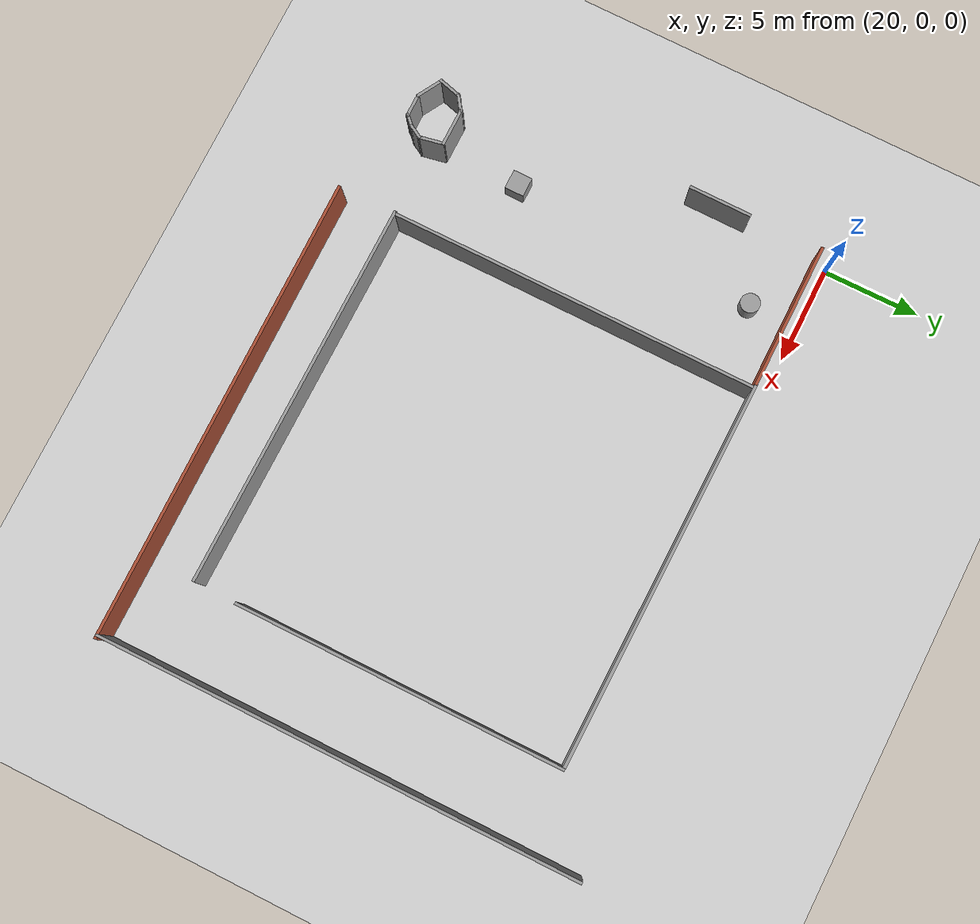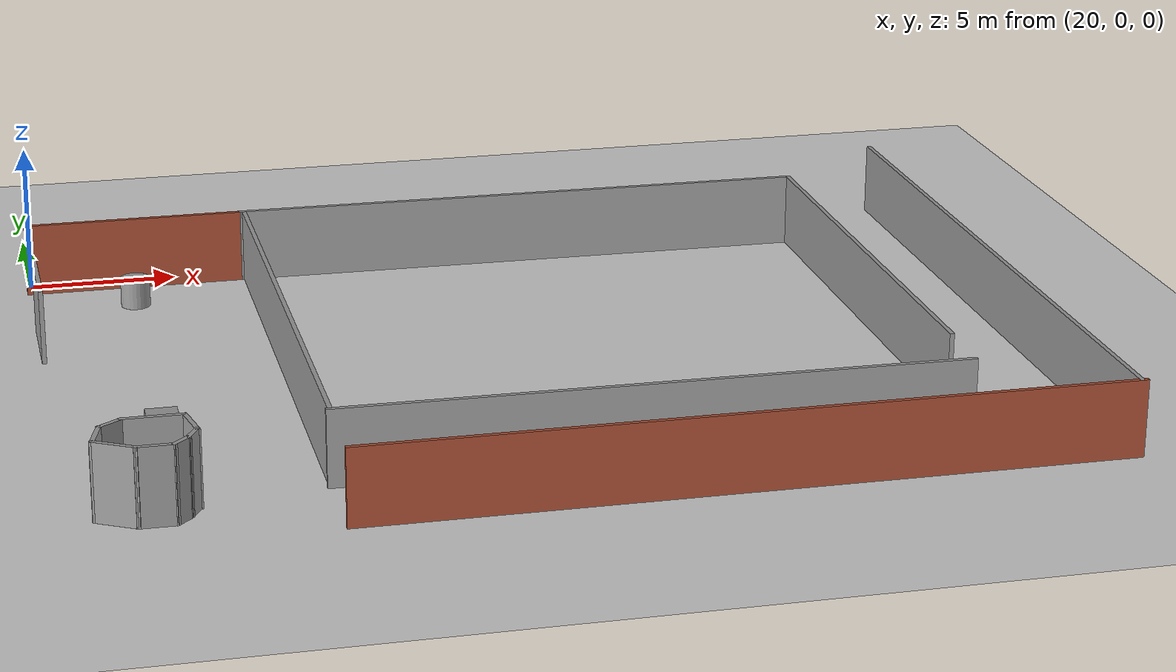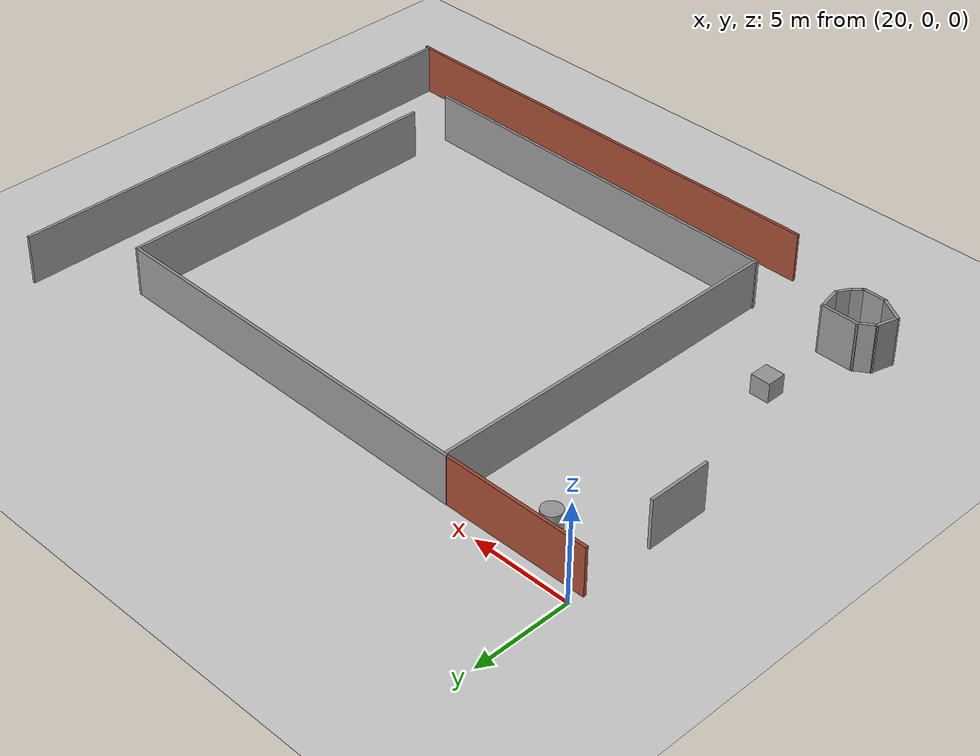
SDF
<sdf version="1.7">
 <world name="default">
  <model name="ground_plane">
   <static>1</static>
   <link name="link">
    <collision name="collision">
     <geometry><plane><normal>0 0 1</normal><size>150 100</size></plane></geometry>
     <surface>
      <contact><collide_bitmask>65535</collide_bitmask></contact>
      <friction><ode><mu>100</mu><mu2>50</mu2></ode></friction>
     </surface>
    </collision>
    <visual name="visual">
     <cast_shadows>0</cast_shadows>
     <geometry><plane><normal>0 0 1</normal><size>150 100</size></plane></geometry>
     <material>
      <script><uri>file://media/materials/scripts/gazebo.material</uri><name>Gazebo/Grey</name></script>
     </material>
    </visual>
   </link>
  </model>
  <model name="unit_cylinder">
   <link name="link">
    <inertial>
     <mass>1</mass>
     <inertia><ixx>0.145833</ixx><ixy>0</ixy><ixz>0</ixz><iyy>0.145833</iyy><iyz>0</iyz><izz>0.125</izz></inertia>
    </inertial>
    <visual name="visual">
     <geometry><cylinder><radius>0.5</radius><length>1</length></cylinder></geometry>
     <material>
      <script><name>Gazebo/Grey</name><uri>file://media/materials/scripts/gazebo.material</uri></script>
      <shader type="pixel"><normal_map>__default__</normal_map></shader>
      <ambient>0.3 0.3 0.3 1</ambient>
      <diffuse>0.7 0.7 0.7 1</diffuse>
      <specular>0.01 0.01 0.01 1</specular>
      <emissive>0 0 0 1</emissive>
     </material>
    </visual>
    <collision name="collision">
     <geometry><cylinder><radius>1</radius><length>1</length></cylinder></geometry>
     <surface>
      <friction>
       <ode><mu>1</mu><mu2>1</mu2><fdir1>0 0 0</fdir1><slip1>0</slip1><slip2>0</slip2></ode>
       <torsional>
        <coefficient>1</coefficient>
        <patch_radius>0</patch_radius>
        <surface_radius>0</surface_radius>
        <use_patch_radius>1</use_patch_radius>
        <ode><slip>0</slip></ode>
       </torsional>
      </friction>
      <bounce><restitution_coefficient>0</restitution_coefficient><threshold>1e+06</threshold></bounce>
      <contact>
       <collide_without_contact>0</collide_without_contact>
       <collide_without_contact_bitmask>1</collide_without_contact_bitmask>
       <collide_bitmask>1</collide_bitmask>
       <ode>
        <soft_cfm>0</soft_cfm>
        <soft_erp>0.2</soft_erp>
        <kp>1e+13</kp>
        <kd>1</kd>
        <max_vel>0.01</max_vel>
        <min_depth>0</min_depth>
       </ode>
       <bullet>
        <split_impulse>1</split_impulse>
        <split_impulse_penetration_threshold>-0.01</split_impulse_penetration_threshold>
        <soft_cfm>0</soft_cfm>
        <soft_erp>0.2</soft_erp>
        <kp>1e+13</kp>
        <kd>1</kd>
       </bullet>
      </contact>
     </surface>
    </collision>
   </link>
   <link name="link_1">
    <inertial>
     <mass>1</mass>
     <inertia>
      <ixx>0.166667</ixx>
      <ixy>0</ixy>
      <ixz>0</ixz>
      <iyy>0.166667</iyy>
      <iyz>0</iyz>
      <izz>0.166667</izz>
     </inertia>
    </inertial>
    <pose>-0.400023 -12.7768 -0 0 -0 0</pose>
    <visual name="visual">
     <geometry><box><size>1 1 1</size></box></geometry>
     <material>
      <lighting>1</lighting>
      <script><uri>file://media/materials/scripts/gazebo.material</uri><name>Gazebo/Grey</name></script>
      <shader type="pixel"><normal_map>__default__</normal_map></shader>
      <ambient>0.3 0.3 0.3 1</ambient>
      <diffuse>0.7 0.7 0.7 1</diffuse>
      <specular>0.01 0.01 0.01 1</specular>
      <emissive>0 0 0 1</emissive>
     </material>
    </visual>
    <collision name="collision">
     <geometry><box><size>3 3 1</size></box></geometry>
     <surface>
      <friction>
       <ode><mu>1</mu><mu2>1</mu2><fdir1>0 0 0</fdir1><slip1>0</slip1><slip2>0</slip2></ode>
       <torsional>
        <coefficient>1</coefficient>
        <patch_radius>0</patch_radius>
        <surface_radius>0</surface_radius>
        <use_patch_radius>1</use_patch_radius>
        <ode><slip>0</slip></ode>
       </torsional>
      </friction>
      <bounce><restitution_coefficient>0</restitution_coefficient><threshold>1e+06</threshold></bounce>
      <contact>
       <collide_without_contact>0</collide_without_contact>
       <collide_without_contact_bitmask>1</collide_without_contact_bitmask>
       <collide_bitmask>1</collide_bitmask>
       <ode>
        <soft_cfm>0</soft_cfm>
        <soft_erp>0.2</soft_erp>
        <kp>1e+13</kp>
        <kd>1</kd>
        <max_vel>0.01</max_vel>
        <min_depth>0</min_depth>
       </ode>
       <bullet>
        <split_impulse>1</split_impulse>
        <split_impulse_penetration_threshold>-0.01</split_impulse_penetration_threshold>
        <soft_cfm>0</soft_cfm>
        <soft_erp>0.2</soft_erp>
        <kp>1e+13</kp>
        <kd>1</kd>
       </bullet>
      </contact>
     </surface>
    </collision>
   </link>
   <static>0</static>
   <pose>23.3885 -2.61658 0.499994 4e-06 -3e-06 3.9e-05</pose>
  </model>
  <model name="unregular_wall_0">
   <pose>22 -19.4926 0 0 -0 0</pose>
   <link name="Wall_0">
    <collision name="Wall_0_Collision">
     <geometry><box><size>1.99003 0.15 2.5</size></box></geometry>
     <pose>0 0 1.25 0 -0 0</pose>
    </collision>
    <visual name="Wall_0_Visual">
     <pose>0 0 1.25 0 -0 0</pose>
     <geometry><box><size>1.99003 0.15 2.5</size></box></geometry>
     <material>
      <script><uri>file://media/materials/scripts/gazebo.material</uri><name>Gazebo/Grey</name></script>
      <ambient>1 1 1 1</ambient>
     </material>
     <meta><layer>0</layer></meta>
    </visual>
    <pose>0.359239 0.205461 0 0 -0 -0.005435</pose>
   </link>
   <link name="Wall_1">
    <collision name="Wall_1_Collision">
     <geometry><box><size>1.37286 0.15 2.5</size></box></geometry>
     <pose>0 0 1.25 0 -0 0</pose>
    </collision>
    <visual name="Wall_1_Visual">
     <pose>0 0 1.25 0 -0 0</pose>
     <geometry><box><size>1.37286 0.15 2.5</size></box></geometry>
     <material>
      <script><uri>file://media/materials/scripts/gazebo.material</uri><name>Gazebo/Grey</name></script>
      <ambient>1 1 1 1</ambient>
     </material>
     <meta><layer>0</layer></meta>
    </visual>
    <pose>1.40424 -0.400057 0 0 -0 -1.38159</pose>
   </link>
   <link name="Wall_2">
    <collision name="Wall_2_Collision">
     <geometry><box><size>0.814319 0.15 2.5</size></box></geometry>
     <pose>0 0 1.25 0 -0 0</pose>
    </collision>
    <visual name="Wall_2_Visual">
     <pose>0 0 1.25 0 -0 0</pose>
     <geometry><box><size>0.814319 0.15 2.5</size></box></geometry>
     <material>
      <script><uri>file://media/materials/scripts/gazebo.material</uri><name>Gazebo/Grey</name></script>
      <ambient>1 1 1 1</ambient>
     </material>
     <meta><layer>0</layer></meta>
    </visual>
    <pose>1.34688 -1.29035 0 0 -0 -2.08149</pose>
   </link>
   <link name="Wall_3">
    <collision name="Wall_3_Collision">
     <geometry><box><size>0.75 0.15 2.5</size></box></geometry>
     <pose>0 0 1.25 0 -0 0</pose>
    </collision>
    <visual name="Wall_3_Visual">
     <pose>0 0 1.25 0 -0 0</pose>
     <geometry><box><size>0.75 0.15 2.5</size></box></geometry>
     <material>
      <script><uri>file://media/materials/scripts/gazebo.material</uri><name>Gazebo/Grey</name></script>
      <ambient>1 1 1 1</ambient>
     </material>
     <meta><layer>0</layer></meta>
    </visual>
    <pose>0.972394 -1.79226 0 0 -0 -2.35619</pose>
   </link>
   <link name="Wall_4">
    <collision name="Wall_4_Collision">
     <geometry><box><size>1.25 0.15 2.5</size></box></geometry>
     <pose>0 0 1.25 0 -0 0</pose>
    </collision>
    <visual name="Wall_4_Visual">
     <pose>0 0 1.25 0 -0 0</pose>
     <geometry><box><size>1.25 0.15 2.5</size></box></geometry>
     <material>
      <script><uri>file://media/materials/scripts/gazebo.material</uri><name>Gazebo/Grey</name></script>
      <ambient>1 1 1 1</ambient>
     </material>
     <meta><layer>0</layer></meta>
    </visual>
    <pose>0.210262 -2.0044 0 0 -0 3.14159</pose>
   </link>
   <link name="Wall_5">
    <collision name="Wall_5_Collision">
     <geometry><box><size>1.5 0.15 2.5</size></box></geometry>
     <pose>0 0 1.25 0 -0 0</pose>
    </collision>
    <visual name="Wall_5_Visual">
     <pose>0 0 1.25 0 -0 0</pose>
     <geometry><box><size>1.5 0.15 2.5</size></box></geometry>
     <material>
      <script><uri>file://media/materials/scripts/gazebo.material</uri><name>Gazebo/Grey</name></script>
      <ambient>1 1 1 1</ambient>
     </material>
     <meta><layer>0</layer></meta>
    </visual>
    <pose>-0.924305 -1.6669 0 0 -0 2.61799</pose>
   </link>
   <link name="Wall_6">
    <collision name="Wall_6_Collision">
     <geometry><box><size>1.25 0.15 2.5</size></box></geometry>
     <pose>0 0 1.25 0 -0 0</pose>
    </collision>
    <visual name="Wall_6_Visual">
     <pose>0 0 1.25 0 -0 0</pose>
     <geometry><box><size>1.25 0.15 2.5</size></box></geometry>
     <material>
      <script><uri>file://media/materials/scripts/gazebo.material</uri><name>Gazebo/Grey</name></script>
      <ambient>1 1 1 1</ambient>
     </material>
     <meta><layer>0</layer></meta>
    </visual>
    <pose>-1.36652 -0.798136 0 0 -0 1.309</pose>
   </link>
   <link name="Wall_7">
    <collision name="Wall_7_Collision">
     <geometry><box><size>0.969686 0.15 2.5</size></box></geometry>
     <pose>0 0 1.25 0 -0 0</pose>
    </collision>
    <visual name="Wall_7_Visual">
     <pose>0 0 1.25 0 -0 0</pose>
     <geometry><box><size>0.969686 0.15 2.5</size></box></geometry>
     <material>
      <script><uri>file://media/materials/scripts/gazebo.material</uri><name>Gazebo/Grey</name></script>
      <ambient>1 1 1 1</ambient>
     </material>
     <meta><layer>0</layer></meta>
    </visual>
    <pose>-0.887466 -0.033208 0 0 -0 0.606679</pose>
   </link>
   <static>1</static>
  </model>
  <model name="slam_world_test.world">
   <link name="Wall_13">
    <pose>12.7307 4.30392 0 0 0 -1.5708</pose>
    <visual name="Wall_13_Visual">
     <pose>0 0 1.25 0 -0 0</pose>
     <geometry><box><size>3.25 0.15 2.5</size></box></geometry>
     <material>
      <script><uri>file://media/materials/scripts/gazebo.material</uri><name>Gazebo/Grey</name></script>
      <ambient>1 1 1 1</ambient>
      <shader type="pixel"/>
     </material>
     <meta><layer>0</layer></meta>
    </visual>
    <collision name="Wall_13_Collision">
     <pose>0 0 1.25 0 -0 0</pose>
     <geometry><box><size>3.25 0.15 2.5</size></box></geometry>
     <surface>
      <friction>
       <ode><mu>1</mu><mu2>1</mu2><fdir1>0 0 0</fdir1><slip1>0</slip1><slip2>0</slip2></ode>
       <torsional>
        <coefficient>1</coefficient>
        <patch_radius>0</patch_radius>
        <surface_radius>0</surface_radius>
        <use_patch_radius>1</use_patch_radius>
        <ode><slip>0</slip></ode>
       </torsional>
      </friction>
      <bounce><restitution_coefficient>0</restitution_coefficient><threshold>1e+06</threshold></bounce>
      <contact>
       <collide_without_contact>0</collide_without_contact>
       <collide_without_contact_bitmask>1</collide_without_contact_bitmask>
       <collide_bitmask>1</collide_bitmask>
       <ode>
        <soft_cfm>0</soft_cfm>
        <soft_erp>0.2</soft_erp>
        <kp>1e+13</kp>
        <kd>1</kd>
        <max_vel>0.01</max_vel>
        <min_depth>0</min_depth>
       </ode>
       <bullet>
        <split_impulse>1</split_impulse>
        <split_impulse_penetration_threshold>-0.01</split_impulse_penetration_threshold>
        <soft_cfm>0</soft_cfm>
        <soft_erp>0.2</soft_erp>
        <kp>1e+13</kp>
        <kd>1</kd>
       </bullet>
      </contact>
     </surface>
    </collision>
   </link>
   <link name="Wall_17_clone">
    <pose>16.3654 9.67924 0 0 -0 0</pose>
    <inertial>
     <mass>1</mass>
     <inertia><ixx>1</ixx><ixy>0</ixy><ixz>0</ixz><iyy>1</iyy><iyz>0</iyz><izz>1</izz></inertia>
    </inertial>
    <visual name="Wall_17_Visual">
     <pose>0 0 1.25 0 -0 0</pose>
     <geometry><box><size>7.5 0.15 2.5</size></box></geometry>
     <material>
      <script><uri>file://media/materials/scripts/gazebo.material</uri><name>Gazebo/Bricks</name></script>
      <ambient>1 1 1 1</ambient>
      <shader type="pixel"><normal_map>__default__</normal_map></shader>
     </material>
     <meta><layer>0</layer></meta>
    </visual>
    <collision name="Wall_17_Collision">
     <pose>0 0 1.25 0 -0 0</pose>
     <geometry><box><size>7.5 0.15 2.5</size></box></geometry>
     <surface>
      <friction>
       <ode><mu>1</mu><mu2>1</mu2><fdir1>0 0 0</fdir1><slip1>0</slip1><slip2>0</slip2></ode>
       <torsional>
        <coefficient>1</coefficient>
        <patch_radius>0</patch_radius>
        <surface_radius>0</surface_radius>
        <use_patch_radius>1</use_patch_radius>
        <ode><slip>0</slip></ode>
       </torsional>
      </friction>
      <bounce><restitution_coefficient>0</restitution_coefficient><threshold>1e+06</threshold></bounce>
      <contact>
       <collide_without_contact>0</collide_without_contact>
       <collide_without_contact_bitmask>1</collide_without_contact_bitmask>
       <collide_bitmask>1</collide_bitmask>
       <ode>
        <soft_cfm>0</soft_cfm>
        <soft_erp>0.2</soft_erp>
        <kp>1e+13</kp>
        <kd>1</kd>
        <max_vel>0.01</max_vel>
        <min_depth>0</min_depth>
       </ode>
       <bullet>
        <split_impulse>1</split_impulse>
        <split_impulse_penetration_threshold>-0.01</split_impulse_penetration_threshold>
        <soft_cfm>0</soft_cfm>
        <soft_erp>0.2</soft_erp>
        <kp>1e+13</kp>
        <kd>1</kd>
       </bullet>
      </contact>
     </surface>
    </collision>
   </link>
   <link name="Wall_30_clone">
    <pose>32.3438 -12.4237 0 0 0 -0.00165</pose>
    <inertial>
     <mass>1</mass>
     <inertia><ixx>1</ixx><ixy>0</ixy><ixz>0</ixz><iyy>1</iyy><iyz>0</iyz><izz>1</izz></inertia>
    </inertial>
    <visual name="Wall_30_Visual">
     <pose>0 0 1.25 0 -0 0</pose>
     <geometry><box><size>24.25 0.15 2.5</size></box></geometry>
     <material>
      <script><uri>file://media/materials/scripts/gazebo.material</uri><name>Gazebo/Bricks</name></script>
      <ambient>1 1 1 1</ambient>
      <shader type="pixel"><normal_map>__default__</normal_map></shader>
     </material>
     <meta><layer>0</layer></meta>
    </visual>
    <collision name="Wall_30_Collision">
     <pose>0 0 1.25 0 -0 0</pose>
     <geometry><box><size>24.25 0.15 2.5</size></box></geometry>
     <surface>
      <friction>
       <ode><mu>1</mu><mu2>1</mu2><fdir1>0 0 0</fdir1><slip1>0</slip1><slip2>0</slip2></ode>
       <torsional>
        <coefficient>1</coefficient>
        <patch_radius>0</patch_radius>
        <surface_radius>0</surface_radius>
        <use_patch_radius>1</use_patch_radius>
        <ode><slip>0</slip></ode>
       </torsional>
      </friction>
      <bounce><restitution_coefficient>0</restitution_coefficient><threshold>1e+06</threshold></bounce>
      <contact>
       <collide_without_contact>0</collide_without_contact>
       <collide_without_contact_bitmask>1</collide_without_contact_bitmask>
       <collide_bitmask>1</collide_bitmask>
       <ode>
        <soft_cfm>0</soft_cfm>
        <soft_erp>0.2</soft_erp>
        <kp>1e+13</kp>
        <kd>1</kd>
        <max_vel>0.01</max_vel>
        <min_depth>0</min_depth>
       </ode>
       <bullet>
        <split_impulse>1</split_impulse>
        <split_impulse_penetration_threshold>-0.01</split_impulse_penetration_threshold>
        <soft_cfm>0</soft_cfm>
        <soft_erp>0.2</soft_erp>
        <kp>1e+13</kp>
        <kd>1</kd>
       </bullet>
      </contact>
     </surface>
    </collision>
   </link>
   <link name="Wall_31_clone">
    <pose>44.2637 -0.024593 0 0 -0 1.57111</pose>
    <inertial>
     <mass>1</mass>
     <inertia><ixx>1</ixx><ixy>0</ixy><ixz>0</ixz><iyy>1</iyy><iyz>0</iyz><izz>1</izz></inertia>
    </inertial>
    <visual name="Wall_31_Visual">
     <pose>0 0 1.25 0 -0 0</pose>
     <geometry><box><size>24.95 0.15 2.5</size></box></geometry>
     <material>
      <script><uri>file://media/materials/scripts/gazebo.material</uri><name>Gazebo/Grey</name></script>
      <ambient>1 1 1 1</ambient>
      <shader type="pixel"><normal_map>__default__</normal_map></shader>
      <diffuse>0.7 0.7 0.7 1</diffuse>
      <specular>0.01 0.01 0.01 1</specular>
      <emissive>0 0 0 1</emissive>
     </material>
     <meta><layer>0</layer></meta>
    </visual>
    <collision name="Wall_31_Collision">
     <pose>0 0 1.25 0 -0 0</pose>
     <geometry><box><size>24.95 0.15 2.5</size></box></geometry>
     <surface>
      <friction>
       <ode><mu>1</mu><mu2>1</mu2><fdir1>0 0 0</fdir1><slip1>0</slip1><slip2>0</slip2></ode>
       <torsional>
        <coefficient>1</coefficient>
        <patch_radius>0</patch_radius>
        <surface_radius>0</surface_radius>
        <use_patch_radius>1</use_patch_radius>
        <ode><slip>0</slip></ode>
       </torsional>
      </friction>
      <bounce><restitution_coefficient>0</restitution_coefficient><threshold>1e+06</threshold></bounce>
      <contact>
       <collide_without_contact>0</collide_without_contact>
       <collide_without_contact_bitmask>1</collide_without_contact_bitmask>
       <collide_bitmask>1</collide_bitmask>
       <ode>
        <soft_cfm>0</soft_cfm>
        <soft_erp>0.2</soft_erp>
        <kp>1e+13</kp>
        <kd>1</kd>
        <max_vel>0.01</max_vel>
        <min_depth>0</min_depth>
       </ode>
       <bullet>
        <split_impulse>1</split_impulse>
        <split_impulse_penetration_threshold>-0.01</split_impulse_penetration_threshold>
        <soft_cfm>0</soft_cfm>
        <soft_erp>0.2</soft_erp>
        <kp>1e+13</kp>
        <kd>1</kd>
       </bullet>
      </contact>
     </surface>
    </collision>
   </link>
   <link name="Wall_32">
    <pose>20.2629 0.119007 0 0 -0 1.5708</pose>
    <inertial>
     <mass>1</mass>
     <inertia><ixx>1</ixx><ixy>0</ixy><ixz>0</ixz><iyy>1</iyy><iyz>0</iyz><izz>1</izz></inertia>
    </inertial>
    <visual name="Wall_32_Visual">
     <pose>0 0 1.25 0 -0 0</pose>
     <geometry><box><size>19 0.15 2.5</size></box></geometry>
     <material>
      <script><uri>file://media/materials/scripts/gazebo.material</uri><name>Gazebo/Grey</name></script>
      <ambient>1 1 1 1</ambient>
      <shader type="pixel"><normal_map>__default__</normal_map></shader>
      <diffuse>0.7 0.7 0.7 1</diffuse>
      <specular>0.01 0.01 0.01 1</specular>
      <emissive>0 0 0 1</emissive>
     </material>
     <meta><layer>0</layer></meta>
    </visual>
    <collision name="Wall_32_Collision">
     <pose>0 0 1.25 0 -0 0</pose>
     <geometry><box><size>19 0.15 2.5</size></box></geometry>
     <surface>
      <friction>
       <ode><mu>1</mu><mu2>1</mu2><fdir1>0 0 0</fdir1><slip1>0</slip1><slip2>0</slip2></ode>
       <torsional>
        <coefficient>1</coefficient>
        <patch_radius>0</patch_radius>
        <surface_radius>0</surface_radius>
        <use_patch_radius>1</use_patch_radius>
        <ode><slip>0</slip></ode>
       </torsional>
      </friction>
      <bounce><restitution_coefficient>0</restitution_coefficient><threshold>1e+06</threshold></bounce>
      <contact>
       <collide_without_contact>0</collide_without_contact>
       <collide_without_contact_bitmask>1</collide_without_contact_bitmask>
       <collide_bitmask>1</collide_bitmask>
       <ode>
        <soft_cfm>0</soft_cfm>
        <soft_erp>0.2</soft_erp>
        <kp>1e+13</kp>
        <kd>1</kd>
        <max_vel>0.01</max_vel>
        <min_depth>0</min_depth>
       </ode>
       <bullet>
        <split_impulse>1</split_impulse>
        <split_impulse_penetration_threshold>-0.01</split_impulse_penetration_threshold>
        <soft_cfm>0</soft_cfm>
        <soft_erp>0.2</soft_erp>
        <kp>1e+13</kp>
        <kd>1</kd>
       </bullet>
      </contact>
     </surface>
    </collision>
   </link>
   <link name="Wall_32_clone">
    <pose>30.0763 9.57795 0 0 -0 3.13005</pose>
    <inertial>
     <mass>1</mass>
     <inertia><ixx>1</ixx><ixy>0</ixy><ixz>0</ixz><iyy>1</iyy><iyz>0</iyz><izz>1</izz></inertia>
    </inertial>
    <visual name="Wall_32_Visual">
     <pose>0 0 1.25 0 -0 0</pose>
     <geometry><box><size>20 0.15 2.5</size></box></geometry>
     <material>
      <script><uri>file://media/materials/scripts/gazebo.material</uri><name>Gazebo/Grey</name></script>
      <ambient>1 1 1 1</ambient>
      <shader type="pixel"><normal_map>__default__</normal_map></shader>
      <diffuse>0.7 0.7 0.7 1</diffuse>
      <specular>0.01 0.01 0.01 1</specular>
      <emissive>0 0 0 1</emissive>
     </material>
     <meta><layer>0</layer></meta>
    </visual>
    <collision name="Wall_32_Collision">
     <pose>0 0 1.25 0 -0 0</pose>
     <geometry><box><size>20 0.15 2.5</size></box></geometry>
     <surface>
      <friction>
       <ode><mu>1</mu><mu2>1</mu2><fdir1>0 0 0</fdir1><slip1>0</slip1><slip2>0</slip2></ode>
       <torsional>
        <coefficient>1</coefficient>
        <patch_radius>0</patch_radius>
        <surface_radius>0</surface_radius>
        <use_patch_radius>1</use_patch_radius>
        <ode><slip>0</slip></ode>
       </torsional>
      </friction>
      <bounce><restitution_coefficient>0</restitution_coefficient><threshold>1e+06</threshold></bounce>
      <contact>
       <collide_without_contact>0</collide_without_contact>
       <collide_without_contact_bitmask>1</collide_without_contact_bitmask>
       <collide_bitmask>1</collide_bitmask>
       <ode>
        <soft_cfm>0</soft_cfm>
        <soft_erp>0.2</soft_erp>
        <kp>1e+13</kp>
        <kd>1</kd>
        <max_vel>0.01</max_vel>
        <min_depth>0</min_depth>
       </ode>
       <bullet>
        <split_impulse>1</split_impulse>
        <split_impulse_penetration_threshold>-0.01</split_impulse_penetration_threshold>
        <soft_cfm>0</soft_cfm>
        <soft_erp>0.2</soft_erp>
        <kp>1e+13</kp>
        <kd>1</kd>
       </bullet>
      </contact>
     </surface>
    </collision>
   </link>
   <link name="Wall_32_clone_0">
    <pose>40.13 1.03329 0 0 -0 1.5708</pose>
    <inertial>
     <mass>1</mass>
     <inertia><ixx>1</ixx><ixy>0</ixy><ixz>0</ixz><iyy>1</iyy><iyz>0</iyz><izz>1</izz></inertia>
    </inertial>
    <visual name="Wall_32_Visual">
     <pose>0 0 1.25 0 -0 0</pose>
     <geometry><box><size>17 0.15 2.5</size></box></geometry>
     <material>
      <script><uri>file://media/materials/scripts/gazebo.material</uri><name>Gazebo/Grey</name></script>
      <ambient>1 1 1 1</ambient>
      <shader type="pixel"><normal_map>__default__</normal_map></shader>
      <diffuse>0.7 0.7 0.7 1</diffuse>
      <specular>0.01 0.01 0.01 1</specular>
      <emissive>0 0 0 1</emissive>
     </material>
     <meta><layer>0</layer></meta>
    </visual>
    <collision name="Wall_32_Collision">
     <pose>0 0 1.25 0 -0 0</pose>
     <geometry><box><size>17 0.15 2.5</size></box></geometry>
     <surface>
      <friction>
       <ode><mu>1</mu><mu2>1</mu2><fdir1>0 0 0</fdir1><slip1>0</slip1><slip2>0</slip2></ode>
       <torsional>
        <coefficient>1</coefficient>
        <patch_radius>0</patch_radius>
        <surface_radius>0</surface_radius>
        <use_patch_radius>1</use_patch_radius>
        <ode><slip>0</slip></ode>
       </torsional>
      </friction>
      <bounce><restitution_coefficient>0</restitution_coefficient><threshold>1e+06</threshold></bounce>
      <contact>
       <collide_without_contact>0</collide_without_contact>
       <collide_without_contact_bitmask>1</collide_without_contact_bitmask>
       <collide_bitmask>1</collide_bitmask>
       <ode>
        <soft_cfm>0</soft_cfm>
        <soft_erp>0.2</soft_erp>
        <kp>1e+13</kp>
        <kd>1</kd>
        <max_vel>0.01</max_vel>
        <min_depth>0</min_depth>
       </ode>
       <bullet>
        <split_impulse>1</split_impulse>
        <split_impulse_penetration_threshold>-0.01</split_impulse_penetration_threshold>
        <soft_cfm>0</soft_cfm>
        <soft_erp>0.2</soft_erp>
        <kp>1e+13</kp>
        <kd>1</kd>
       </bullet>
      </contact>
     </surface>
    </collision>
   </link>
   <link name="Wall_32_clone_clone">
    <pose>30.1301 -9.54013 0 0 -0 3.13005</pose>
    <inertial>
     <mass>1</mass>
     <inertia><ixx>1</ixx><ixy>0</ixy><ixz>0</ixz><iyy>1</iyy><iyz>0</iyz><izz>1</izz></inertia>
    </inertial>
    <visual name="Wall_32_Visual">
     <pose>0 0 1.25 0 -0 0</pose>
     <geometry><box><size>20 0.15 2.5</size></box></geometry>
     <material>
      <script><uri>file://media/materials/scripts/gazebo.material</uri><name>Gazebo/Grey</name></script>
      <ambient>1 1 1 1</ambient>
      <shader type="pixel"><normal_map>__default__</normal_map></shader>
      <diffuse>0.7 0.7 0.7 1</diffuse>
      <specular>0.01 0.01 0.01 1</specular>
      <emissive>0 0 0 1</emissive>
     </material>
     <meta><layer>0</layer></meta>
    </visual>
    <collision name="Wall_32_Collision">
     <pose>0 0 1.25 0 -0 0</pose>
     <geometry><box><size>20 0.15 2.5</size></box></geometry>
     <surface>
      <friction>
       <ode><mu>1</mu><mu2>1</mu2><fdir1>0 0 0</fdir1><slip1>0</slip1><slip2>0</slip2></ode>
       <torsional>
        <coefficient>1</coefficient>
        <patch_radius>0</patch_radius>
        <surface_radius>0</surface_radius>
        <use_patch_radius>1</use_patch_radius>
        <ode><slip>0</slip></ode>
       </torsional>
      </friction>
      <bounce><restitution_coefficient>0</restitution_coefficient><threshold>1e+06</threshold></bounce>
      <contact>
       <collide_without_contact>0</collide_without_contact>
       <collide_without_contact_bitmask>1</collide_without_contact_bitmask>
       <collide_bitmask>1</collide_bitmask>
       <ode>
        <soft_cfm>0</soft_cfm>
        <soft_erp>0.2</soft_erp>
        <kp>1e+13</kp>
        <kd>1</kd>
        <max_vel>0.01</max_vel>
        <min_depth>0</min_depth>
       </ode>
       <bullet>
        <split_impulse>1</split_impulse>
        <split_impulse_penetration_threshold>-0.01</split_impulse_penetration_threshold>
        <soft_cfm>0</soft_cfm>
        <soft_erp>0.2</soft_erp>
        <kp>1e+13</kp>
        <kd>1</kd>
       </bullet>
      </contact>
     </surface>
    </collision>
   </link>
   <static>1</static>
   <pose>7.19162 -10.3857 0 0 -0 0</pose>
  </model>
 </world>
</sdf>
